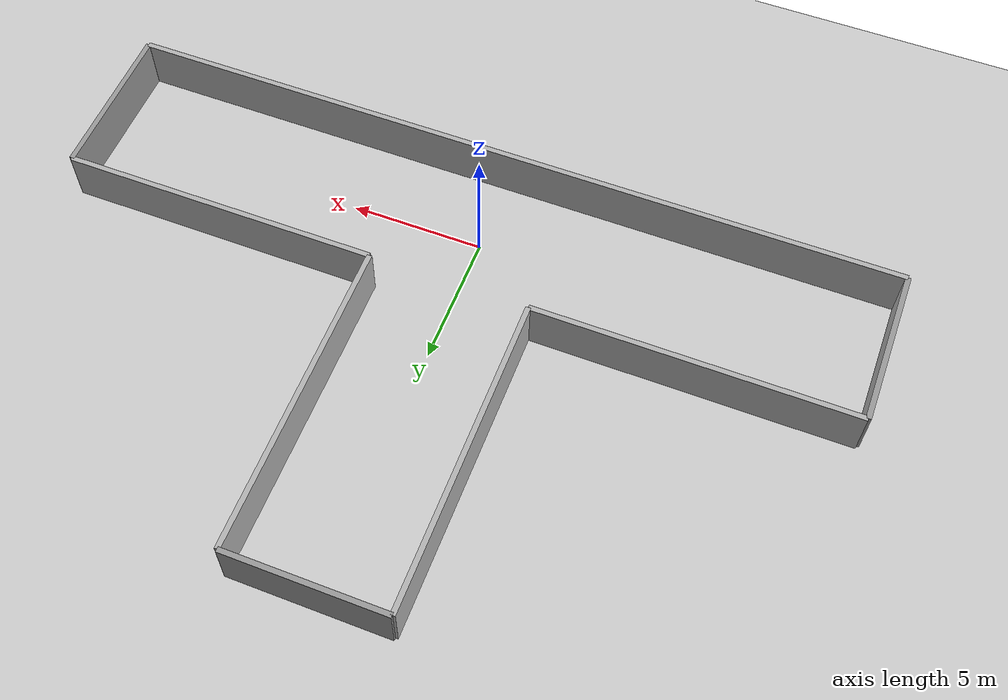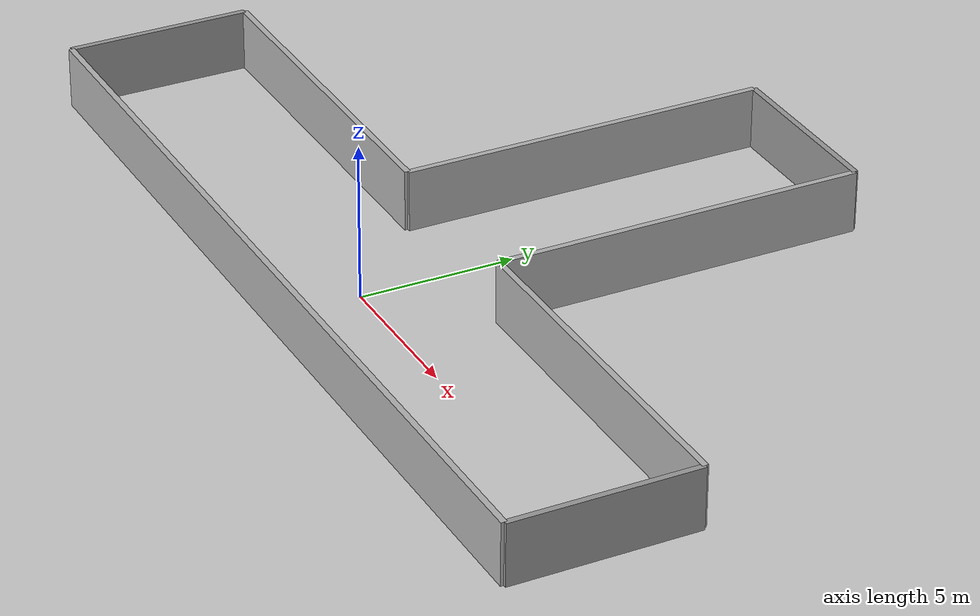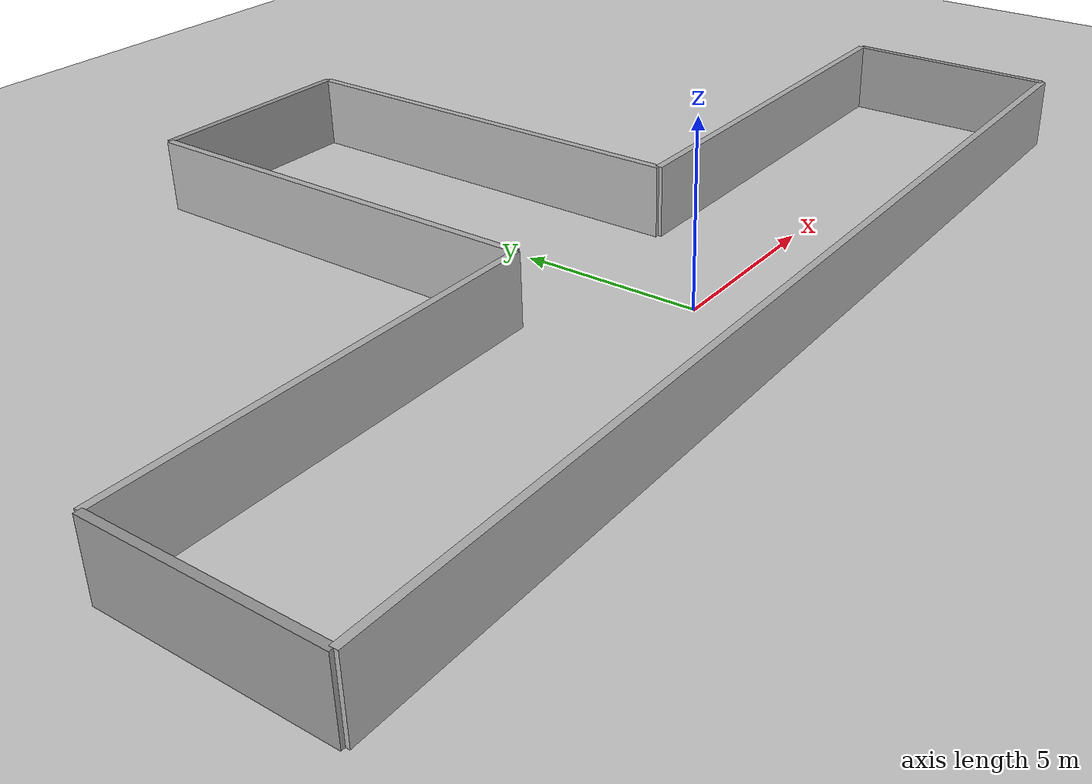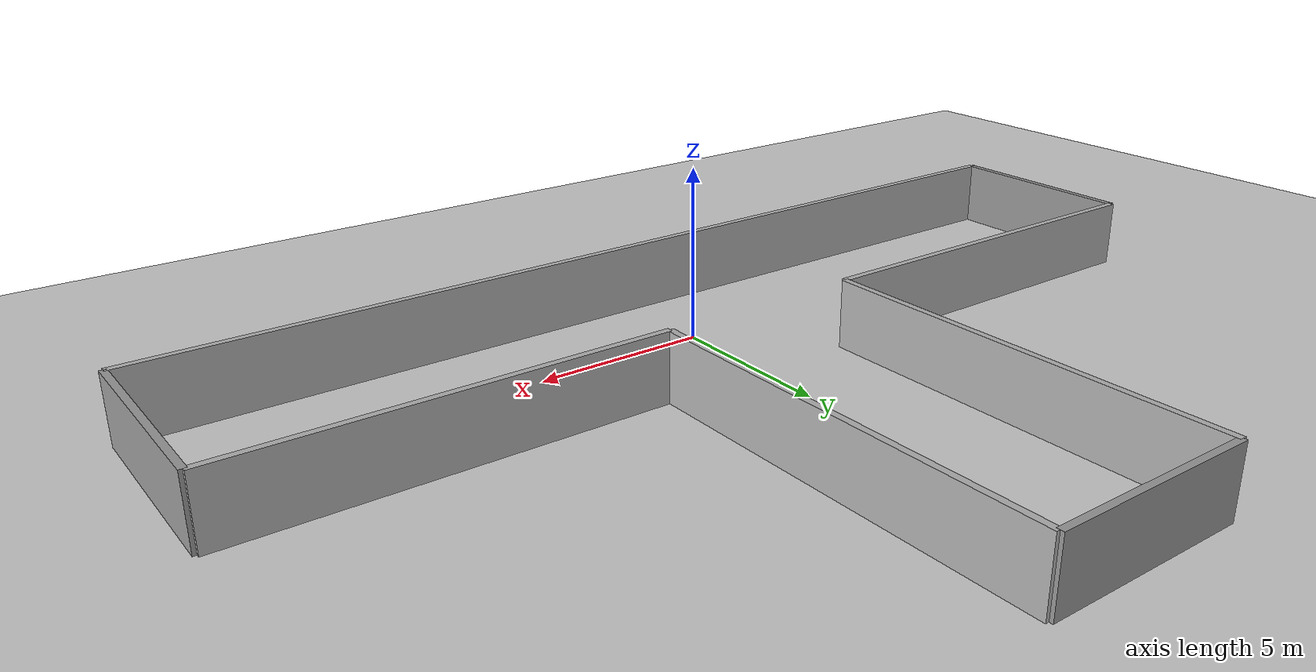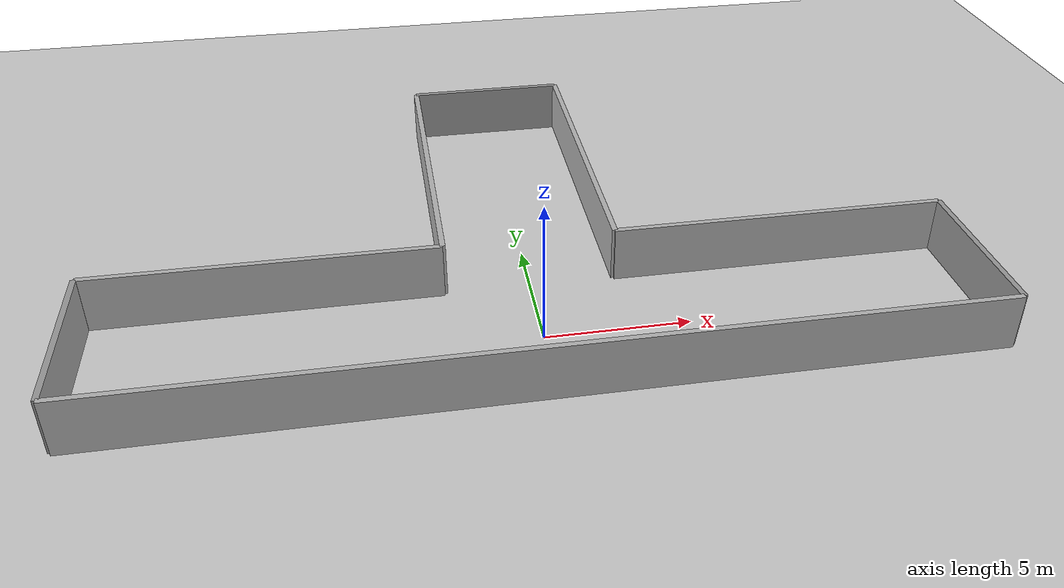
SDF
<sdf version="1.6">
 <world name="tunnel">
  <plugin name="gazebo_ros_state" filename="libgazebo_ros_state.so">
   <ros><namespace>/gazebo</namespace></ros>
   <update_rate>10.0</update_rate>
  </plugin>
  <include><uri>model://sun</uri></include>
  <include><uri>model://ground_plane</uri></include>
  <model name="wall_south">
   <static>true</static>
   <pose>0 -3 1.0  0 0 0</pose>
   <link name="link">
    <collision name="collision"><geometry><box><size>30 0.2 2</size></box></geometry></collision>
    <visual name="visual">
     <geometry><box><size>30 0.2 2</size></box></geometry>
     <material><ambient>0.7 0.7 0.7 1</ambient></material>
    </visual>
   </link>
  </model>
  <model name="wall_north_west">
   <static>true</static>
   <pose>-9 3 1.0  0 0 0</pose>
   <link name="link">
    <collision name="collision"><geometry><box><size>12 0.2 2</size></box></geometry></collision>
    <visual name="visual">
     <geometry><box><size>12 0.2 2</size></box></geometry>
     <material><ambient>0.7 0.7 0.7 1</ambient></material>
    </visual>
   </link>
  </model>
  <model name="wall_north_east">
   <static>true</static>
   <pose>9 3 1.0  0 0 0</pose>
   <link name="link">
    <collision name="collision"><geometry><box><size>12 0.2 2</size></box></geometry></collision>
    <visual name="visual">
     <geometry><box><size>12 0.2 2</size></box></geometry>
     <material><ambient>0.7 0.7 0.7 1</ambient></material>
    </visual>
   </link>
  </model>
  <model name="wall_west_end">
   <static>true</static>
   <pose>-15 0 1.0  0 0 1.5708</pose>
   <link name="link">
    <collision name="collision"><geometry><box><size>6 0.2 2</size></box></geometry></collision>
    <visual name="visual">
     <geometry><box><size>6 0.2 2</size></box></geometry>
     <material><ambient>0.6 0.6 0.6 1</ambient></material>
    </visual>
   </link>
  </model>
  <model name="wall_east_end">
   <static>true</static>
   <pose>15 0 1.0  0 0 1.5708</pose>
   <link name="link">
    <collision name="collision"><geometry><box><size>6 0.2 2</size></box></geometry></collision>
    <visual name="visual">
     <geometry><box><size>6 0.2 2</size></box></geometry>
     <material><ambient>0.6 0.6 0.6 1</ambient></material>
    </visual>
   </link>
  </model>
  <model name="branch_wall_west">
   <static>true</static>
   <pose>-3 9 1.0  0 0 1.5708</pose>
   <link name="link">
    <collision name="collision"><geometry><box><size>12 0.2 2</size></box></geometry></collision>
    <visual name="visual">
     <geometry><box><size>12 0.2 2</size></box></geometry>
     <material><ambient>0.7 0.7 0.7 1</ambient></material>
    </visual>
   </link>
  </model>
  <model name="branch_wall_east">
   <static>true</static>
   <pose>3 9 1.0  0 0 1.5708</pose>
   <link name="link">
    <collision name="collision"><geometry><box><size>12 0.2 2</size></box></geometry></collision>
    <visual name="visual">
     <geometry><box><size>12 0.2 2</size></box></geometry>
     <material><ambient>0.7 0.7 0.7 1</ambient></material>
    </visual>
   </link>
  </model>
  <model name="branch_end">
   <static>true</static>
   <pose>0 15 1.0  0 0 0</pose>
   <link name="link">
    <collision name="collision"><geometry><box><size>6 0.2 2</size></box></geometry></collision>
    <visual name="visual">
     <geometry><box><size>6 0.2 2</size></box></geometry>
     <material><ambient>0.6 0.6 0.6 1</ambient></material>
    </visual>
   </link>
  </model>
 </world>
</sdf>
